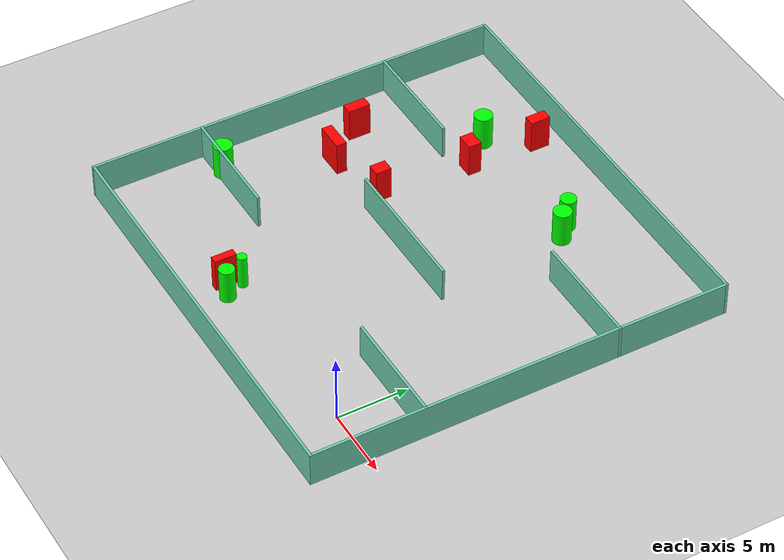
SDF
<sdf version="1.7">
 <world name="default">
  <light name="sun" type="directional">
   <pose>0 0 10 0 -0 0</pose>
   <diffuse>0.8 0.8 0.8 1</diffuse>
   <specular>0.2 0.2 0.2 1</specular>
   <attenuation>
    <range>1000</range>
    <constant>0.9</constant>
    <linear>0.01</linear>
    <quadratic>0.001</quadratic>
   </attenuation>
   <direction>-0.5 0.1 -0.9</direction>
   <spot><inner_angle>0</inner_angle><outer_angle>0</outer_angle><falloff>0</falloff></spot>
  </light>
  <model name="ground_plane">
   <static>1</static>
   <link name="link">
    <collision name="collision">
     <geometry><plane><normal>0 0 1</normal><size>100 100</size></plane></geometry>
     <surface>
      <contact><collide_bitmask>65535</collide_bitmask></contact>
      <friction><ode><mu>100</mu><mu2>50</mu2></ode></friction>
     </surface>
    </collision>
    <visual name="visual">
     <cast_shadows>0</cast_shadows>
     <geometry><plane><normal>0 0 1</normal><size>100 100</size></plane></geometry>
     <material>
      <script><uri>file://media/materials/scripts/gazebo.material</uri><name>Gazebo/Grey</name></script>
     </material>
    </visual>
   </link>
  </model>
  <gravity>0 0 -9.8</gravity>
  <magnetic_field>6e-06 2.3e-05 -4.2e-05</magnetic_field>
  <atmosphere type="adiabatic"/>
  <physics type="ode">
   <max_step_size>0.001</max_step_size>
   <real_time_factor>1</real_time_factor>
   <real_time_update_rate>1000</real_time_update_rate>
  </physics>
  <scene><ambient>0.4 0.4 0.4 1</ambient><background>0.7 0.7 0.7 1</background><shadows>1</shadows></scene>
  <spherical_coordinates>
   <surface_model>EARTH_WGS84</surface_model>
   <latitude_deg>0</latitude_deg>
   <longitude_deg>0</longitude_deg>
   <elevation>0</elevation>
   <heading_deg>0</heading_deg>
  </spherical_coordinates>
  <model name="my_base_walls">
   <link name="Wall_10">
    <collision name="Wall_10_Collision">
     <geometry><box><size>8.2 0.2 2.5</size></box></geometry>
     <pose>0 0 1.25 0 -0 0</pose>
    </collision>
    <visual name="Wall_10_Visual">
     <pose>0 0 1.25 0 -0 0</pose>
     <geometry><box><size>8.2 0.2 2.5</size></box></geometry>
     <material>
      <script><uri>file://media/materials/scripts/gazebo.material</uri><name>Gazebo/Grey</name></script>
      <ambient>0.435294 0.796078 0.67451 1</ambient>
     </material>
     <meta><layer>0</layer></meta>
    </visual>
    <pose>-11 -7 0 0 -0 0</pose>
   </link>
   <link name="Wall_12">
    <collision name="Wall_12_Collision">
     <geometry><box><size>8.2 0.2 2.5</size></box></geometry>
     <pose>0 0 1.25 0 -0 0</pose>
    </collision>
    <visual name="Wall_12_Visual">
     <pose>0 0 1.25 0 -0 0</pose>
     <geometry><box><size>8.2 0.2 2.5</size></box></geometry>
     <material>
      <script><uri>file://media/materials/scripts/gazebo.material</uri><name>Gazebo/Grey</name></script>
      <ambient>0.435294 0.796078 0.67451 1</ambient>
     </material>
     <meta><layer>0</layer></meta>
    </visual>
    <pose>-11 7 0 0 -0 0</pose>
   </link>
   <link name="Wall_14">
    <collision name="Wall_14_Collision">
     <geometry><box><size>8.2 0.2 2.5</size></box></geometry>
     <pose>0 0 1.25 0 -0 0</pose>
    </collision>
    <visual name="Wall_14_Visual">
     <pose>0 0 1.25 0 -0 0</pose>
     <geometry><box><size>8.2 0.2 2.5</size></box></geometry>
     <material>
      <script><uri>file://media/materials/scripts/gazebo.material</uri><name>Gazebo/Grey</name></script>
      <ambient>0.435294 0.796078 0.67451 1</ambient>
     </material>
     <meta><layer>0</layer></meta>
    </visual>
    <pose>11 7 0 0 -0 3.14159</pose>
   </link>
   <link name="Wall_16">
    <collision name="Wall_16_Collision">
     <geometry><box><size>10.2 0.2 2.5</size></box></geometry>
     <pose>0 0 1.25 0 -0 0</pose>
    </collision>
    <visual name="Wall_16_Visual">
     <pose>0 0 1.25 0 -0 0</pose>
     <geometry><box><size>10.2 0.2 2.5</size></box></geometry>
     <material>
      <script><uri>file://media/materials/scripts/gazebo.material</uri><name>Gazebo/Grey</name></script>
      <ambient>0.435294 0.796078 0.67451 1</ambient>
     </material>
     <meta><layer>0</layer></meta>
    </visual>
    <pose>0 0 0 0 -0 3.14159</pose>
   </link>
   <link name="Wall_2">
    <collision name="Wall_2_Collision">
     <geometry><box><size>30.2 0.2 2.5</size></box></geometry>
     <pose>0 0 1.25 0 -0 0</pose>
    </collision>
    <visual name="Wall_2_Visual">
     <pose>0 0 1.25 0 -0 0</pose>
     <geometry><box><size>30.2 0.2 2.5</size></box></geometry>
     <material>
      <script><uri>file://media/materials/scripts/gazebo.material</uri><name>Gazebo/Grey</name></script>
      <ambient>0.435294 0.796078 0.67451 1</ambient>
     </material>
     <meta><layer>0</layer></meta>
    </visual>
    <pose>0 -15 0 0 -0 3.14159</pose>
   </link>
   <link name="Wall_3">
    <collision name="Wall_3_Collision">
     <geometry><box><size>30.2 0.2 2.5</size></box></geometry>
     <pose>0 0 1.25 0 -0 0</pose>
    </collision>
    <visual name="Wall_3_Visual">
     <pose>0 0 1.25 0 -0 0</pose>
     <geometry><box><size>30.2 0.2 2.5</size></box></geometry>
     <material>
      <script><uri>file://media/materials/scripts/gazebo.material</uri><name>Gazebo/Grey</name></script>
      <ambient>0.435294 0.796078 0.67451 1</ambient>
     </material>
     <meta><layer>0</layer></meta>
    </visual>
    <pose>-15 0 0 0 -0 1.5708</pose>
   </link>
   <link name="Wall_4">
    <collision name="Wall_4_Collision">
     <geometry><box><size>30.2 0.2 2.5</size></box></geometry>
     <pose>0 0 1.25 0 -0 0</pose>
    </collision>
    <visual name="Wall_4_Visual">
     <pose>0 0 1.25 0 -0 0</pose>
     <geometry><box><size>30.2 0.2 2.5</size></box></geometry>
     <material>
      <script><uri>file://media/materials/scripts/gazebo.material</uri><name>Gazebo/Grey</name></script>
      <ambient>0.435294 0.796078 0.67451 1</ambient>
     </material>
     <meta><layer>0</layer></meta>
    </visual>
    <pose>0 15 0 0 -0 0</pose>
   </link>
   <link name="Wall_6">
    <collision name="Wall_6_Collision">
     <geometry><box><size>30.2 0.2 2.5</size></box></geometry>
     <pose>0 0 1.25 0 -0 0</pose>
    </collision>
    <visual name="Wall_6_Visual">
     <pose>0 0 1.25 0 -0 0</pose>
     <geometry><box><size>30.2 0.2 2.5</size></box></geometry>
     <material>
      <script><uri>file://media/materials/scripts/gazebo.material</uri><name>Gazebo/Grey</name></script>
      <ambient>0.435294 0.796078 0.67451 1</ambient>
     </material>
     <meta><layer>0</layer></meta>
    </visual>
    <pose>15 0 0 0 -0 1.5708</pose>
   </link>
   <link name="Wall_8">
    <collision name="Wall_8_Collision">
     <geometry><box><size>8.2 0.2 2.5</size></box></geometry>
     <pose>0 0 1.25 0 -0 0</pose>
    </collision>
    <visual name="Wall_8_Visual">
     <pose>0 0 1.25 0 -0 0</pose>
     <geometry><box><size>8.2 0.2 2.5</size></box></geometry>
     <material>
      <script><uri>file://media/materials/scripts/gazebo.material</uri><name>Gazebo/Grey</name></script>
      <ambient>0.435294 0.796078 0.67451 1</ambient>
     </material>
     <meta><layer>0</layer></meta>
    </visual>
    <pose>11 -7 0 0 -0 3.14159</pose>
   </link>
   <static>1</static>
   <pose>-11 11 0 0 -0 0</pose>
  </model>
  <model name="cylinder1">
   <static>1</static>
   <link name="link">
    <inertial>
     <mass>1</mass>
     <inertia><ixx>0.5</ixx><ixy>0</ixy><ixz>0</ixz><iyy>0.5</iyy><iyz>0</iyz><izz>1</izz></inertia>
    </inertial>
    <collision name="collision">
     <geometry><cylinder><radius>0.6589366689298126</radius><length>2.5</length></cylinder></geometry>
    </collision>
    <visual name="visual">
     <geometry><cylinder><radius>0.6589366689298126</radius><length>2.5</length></cylinder></geometry>
     <material>
      <ambient>0 1 0 1</ambient>
      <diffuse>0 1 0 1</diffuse>
      <specular>0.1 0.1 0.1 1</specular>
      <emissive>0 0 0 0</emissive>
     </material>
    </visual>
   </link>
   <pose>-17.789928839886137 21.02175442057582 1.25 0 0 0</pose>
  </model>
  <model name="cylinder2">
   <static>1</static>
   <link name="link">
    <inertial>
     <mass>1</mass>
     <inertia><ixx>0.5</ixx><ixy>0</ixy><ixz>0</ixz><iyy>0.5</iyy><iyz>0</iyz><izz>1</izz></inertia>
    </inertial>
    <collision name="collision">
     <geometry><cylinder><radius>0.6472704856615344</radius><length>2.5</length></cylinder></geometry>
    </collision>
    <visual name="visual">
     <geometry><cylinder><radius>0.6472704856615344</radius><length>2.5</length></cylinder></geometry>
     <material>
      <ambient>0 1 0 1</ambient>
      <diffuse>0 1 0 1</diffuse>
      <specular>0.1 0.1 0.1 1</specular>
      <emissive>0 0 0 0</emissive>
     </material>
    </visual>
   </link>
   <pose>-6.986288048912121 20.600663281938676 1.25 0 0 0</pose>
  </model>
  <model name="cylinder3">
   <static>1</static>
   <link name="link">
    <inertial>
     <mass>1</mass>
     <inertia><ixx>0.5</ixx><ixy>0</ixy><ixz>0</ixz><iyy>0.5</iyy><iyz>0</iyz><izz>1</izz></inertia>
    </inertial>
    <collision name="collision">
     <geometry><cylinder><radius>0.5654263312267895</radius><length>2.5</length></cylinder></geometry>
    </collision>
    <visual name="visual">
     <geometry><cylinder><radius>0.5654263312267895</radius><length>2.5</length></cylinder></geometry>
     <material>
      <ambient>0 1 0 1</ambient>
      <diffuse>0 1 0 1</diffuse>
      <specular>0.1 0.1 0.1 1</specular>
      <emissive>0 0 0 0</emissive>
     </material>
    </visual>
   </link>
   <pose>-7.850969077710486 21.569357446857868 1.25 0 0 0</pose>
  </model>
  <model name="cylinder4">
   <static>1</static>
   <link name="link">
    <inertial>
     <mass>1</mass>
     <inertia><ixx>0.5</ixx><ixy>0</ixy><ixz>0</ixz><iyy>0.5</iyy><iyz>0</iyz><izz>1</izz></inertia>
    </inertial>
    <collision name="collision">
     <geometry><cylinder><radius>0.5498495248357173</radius><length>2.5</length></cylinder></geometry>
    </collision>
    <visual name="visual">
     <geometry><cylinder><radius>0.5498495248357173</radius><length>2.5</length></cylinder></geometry>
     <material>
      <ambient>0 1 0 1</ambient>
      <diffuse>0 1 0 1</diffuse>
      <specular>0.1 0.1 0.1 1</specular>
      <emissive>0 0 0 0</emissive>
     </material>
    </visual>
   </link>
   <pose>-12.926357031420814 -0.8963989895563667 1.25 0 0 0</pose>
  </model>
  <model name="cylinder5">
   <static>1</static>
   <link name="link">
    <inertial>
     <mass>1</mass>
     <inertia><ixx>0.5</ixx><ixy>0</ixy><ixz>0</ixz><iyy>0.5</iyy><iyz>0</iyz><izz>1</izz></inertia>
    </inertial>
    <collision name="collision">
     <geometry><cylinder><radius>0.6767160265085634</radius><length>2.5</length></cylinder></geometry>
    </collision>
    <visual name="visual">
     <geometry><cylinder><radius>0.6767160265085634</radius><length>2.5</length></cylinder></geometry>
     <material>
      <ambient>0 1 0 1</ambient>
      <diffuse>0 1 0 1</diffuse>
      <specular>0.1 0.1 0.1 1</specular>
      <emissive>0 0 0 0</emissive>
     </material>
    </visual>
   </link>
   <pose>-23.757080548463573 4.398132867806242 1.25 0 0 0</pose>
  </model>
  <model name="cylinder6">
   <static>1</static>
   <link name="link">
    <inertial>
     <mass>1</mass>
     <inertia><ixx>0.5</ixx><ixy>0</ixy><ixz>0</ixz><iyy>0.5</iyy><iyz>0</iyz><izz>1</izz></inertia>
    </inertial>
    <collision name="collision">
     <geometry><cylinder><radius>0.34116860564603485</radius><length>2.5</length></cylinder></geometry>
    </collision>
    <visual name="visual">
     <geometry><cylinder><radius>0.34116860564603485</radius><length>2.5</length></cylinder></geometry>
     <material>
      <ambient>0 1 0 1</ambient>
      <diffuse>0 1 0 1</diffuse>
      <specular>0.1 0.1 0.1 1</specular>
      <emissive>0 0 0 0</emissive>
     </material>
    </visual>
   </link>
   <pose>-13.482182975568325 0.4818927248879792 1.25 0 0 0</pose>
  </model>
  <model name="box1">
   <static>1</static>
   <link name="link">
    <inertial>
     <mass>1</mass>
     <inertia><ixx>0.083</ixx><ixy>0</ixy><ixz>0</ixz><iyy>0.083</iyy><iyz>0</iyz><izz>0.083</izz></inertia>
    </inertial>
    <collision name="collision">
     <geometry><box><size>2.0634605311945187 0.7435344948563751 2.5</size></box></geometry>
    </collision>
    <visual name="visual">
     <geometry><box><size>2.0634605311945187 0.7435344948563751 2.5</size></box></geometry>
     <material>
      <ambient>1 0 0 1</ambient>
      <diffuse>1 0 0 1</diffuse>
      <specular>0.1 0.1 0.1 1</specular>
      <emissive>0 0 0 0</emissive>
     </material>
    </visual>
    <sensor name="my_contact" type="contact">
     <contact><collision>box_collision</collision><topic>__default_topic__</topic></contact>
    </sensor>
   </link>
   <pose>-20.904878535702345 11.28958629177442 1.25 0 0 0</pose>
  </model>
  <model name="box2">
   <static>1</static>
   <link name="link">
    <inertial>
     <mass>1</mass>
     <inertia><ixx>0.083</ixx><ixy>0</ixy><ixz>0</ixz><iyy>0.083</iyy><iyz>0</iyz><izz>0.083</izz></inertia>
    </inertial>
    <collision name="collision">
     <geometry><box><size>0.7879141399328958 1.4424154216817644 2.5</size></box></geometry>
    </collision>
    <visual name="visual">
     <geometry><box><size>0.7879141399328958 1.4424154216817644 2.5</size></box></geometry>
     <material>
      <ambient>1 0 0 1</ambient>
      <diffuse>1 0 0 1</diffuse>
      <specular>0.1 0.1 0.1 1</specular>
      <emissive>0 0 0 0</emissive>
     </material>
    </visual>
    <sensor name="my_contact" type="contact">
     <contact><collision>box_collision</collision><topic>__default_topic__</topic></contact>
    </sensor>
   </link>
   <pose>-15.776082314893923 24.073092857646536 1.25 0 0 0</pose>
  </model>
  <model name="box3">
   <static>1</static>
   <link name="link">
    <inertial>
     <mass>1</mass>
     <inertia><ixx>0.083</ixx><ixy>0</ixy><ixz>0</ixz><iyy>0.083</iyy><iyz>0</iyz><izz>0.083</izz></inertia>
    </inertial>
    <collision name="collision">
     <geometry><box><size>0.5571177358700222 1.5544029722215684 2.5</size></box></geometry>
    </collision>
    <visual name="visual">
     <geometry><box><size>0.5571177358700222 1.5544029722215684 2.5</size></box></geometry>
     <material>
      <ambient>1 0 0 1</ambient>
      <diffuse>1 0 0 1</diffuse>
      <specular>0.1 0.1 0.1 1</specular>
      <emissive>0 0 0 0</emissive>
     </material>
    </visual>
    <sensor name="my_contact" type="contact">
     <contact><collision>box_collision</collision><topic>__default_topic__</topic></contact>
    </sensor>
   </link>
   <pose>-14.102872528134025 -0.49751956828317656 1.25 0 0 0</pose>
  </model>
  <model name="box4">
   <static>1</static>
   <link name="link">
    <inertial>
     <mass>1</mass>
     <inertia><ixx>0.083</ixx><ixy>0</ixy><ixz>0</ixz><iyy>0.083</iyy><iyz>0</iyz><izz>0.083</izz></inertia>
    </inertial>
    <collision name="collision">
     <geometry><box><size>0.900450300296568 1.1311971035539528 2.5</size></box></geometry>
    </collision>
    <visual name="visual">
     <geometry><box><size>0.900450300296568 1.1311971035539528 2.5</size></box></geometry>
     <material>
      <ambient>1 0 0 1</ambient>
      <diffuse>1 0 0 1</diffuse>
      <specular>0.1 0.1 0.1 1</specular>
      <emissive>0 0 0 0</emissive>
     </material>
    </visual>
    <sensor name="my_contact" type="contact">
     <contact><collision>box_collision</collision><topic>__default_topic__</topic></contact>
    </sensor>
   </link>
   <pose>-16.586116301754032 12.410849874908601 1.25 0 0 0</pose>
  </model>
  <model name="box5">
   <static>1</static>
   <link name="link">
    <inertial>
     <mass>1</mass>
     <inertia><ixx>0.083</ixx><ixy>0</ixy><ixz>0</ixz><iyy>0.083</iyy><iyz>0</iyz><izz>0.083</izz></inertia>
    </inertial>
    <collision name="collision">
     <geometry><box><size>1.236219394910932 0.9451535477310875 2.5</size></box></geometry>
    </collision>
    <visual name="visual">
     <geometry><box><size>1.236219394910932 0.9451535477310875 2.5</size></box></geometry>
     <material>
      <ambient>1 0 0 1</ambient>
      <diffuse>1 0 0 1</diffuse>
      <specular>0.1 0.1 0.1 1</specular>
      <emissive>0 0 0 0</emissive>
     </material>
    </visual>
    <sensor name="my_contact" type="contact">
     <contact><collision>box_collision</collision><topic>__default_topic__</topic></contact>
    </sensor>
   </link>
   <pose>-16.00439026140303 18.9770376439754 1.25 0 0 0</pose>
  </model>
  <model name="box6">
   <static>1</static>
   <link name="link">
    <inertial>
     <mass>1</mass>
     <inertia><ixx>0.083</ixx><ixy>0</ixy><ixz>0</ixz><iyy>0.083</iyy><iyz>0</iyz><izz>0.083</izz></inertia>
    </inertial>
    <collision name="collision">
     <geometry><box><size>0.8051505024058001 1.616750016912372 2.5</size></box></geometry>
    </collision>
    <visual name="visual">
     <geometry><box><size>0.8051505024058001 1.616750016912372 2.5</size></box></geometry>
     <material>
      <ambient>1 0 0 1</ambient>
      <diffuse>1 0 0 1</diffuse>
      <specular>0.1 0.1 0.1 1</specular>
      <emissive>0 0 0 0</emissive>
     </material>
    </visual>
    <sensor name="my_contact" type="contact">
     <contact><collision>box_collision</collision><topic>__default_topic__</topic></contact>
    </sensor>
   </link>
   <pose>-22.896436224130138 14.115714742596047 1.25 0 0 0</pose>
  </model>
 </world>
</sdf>
